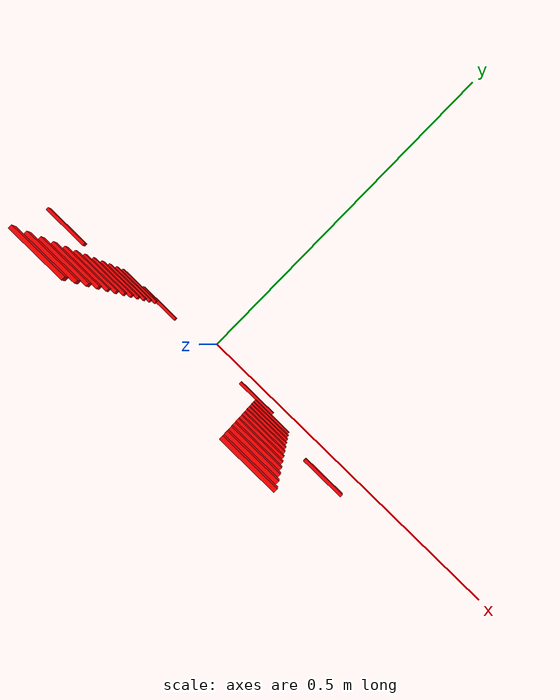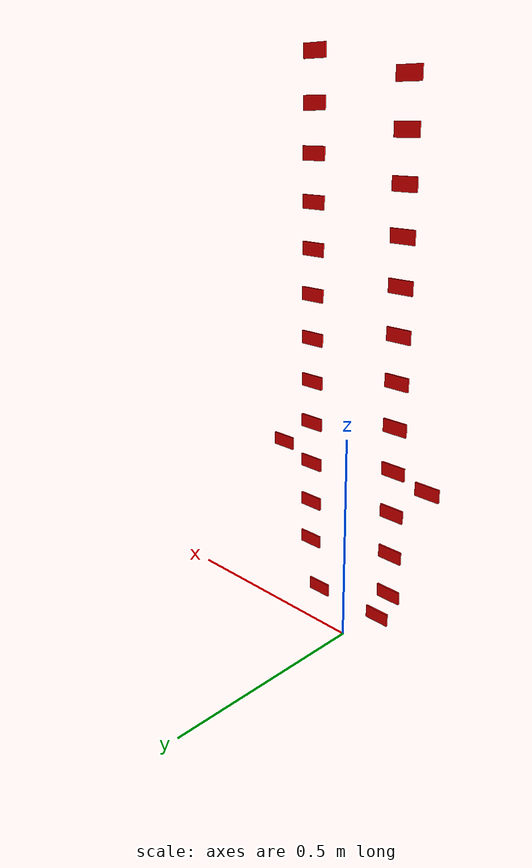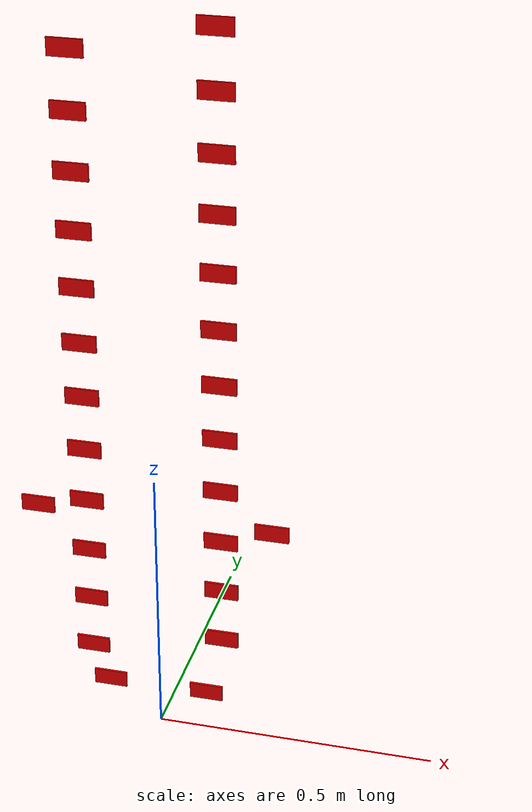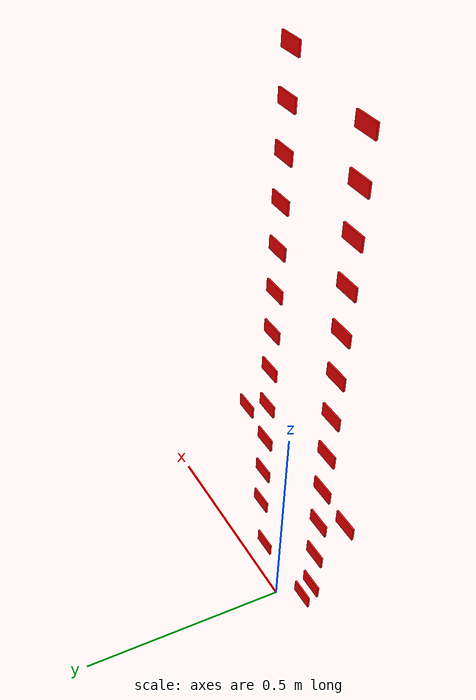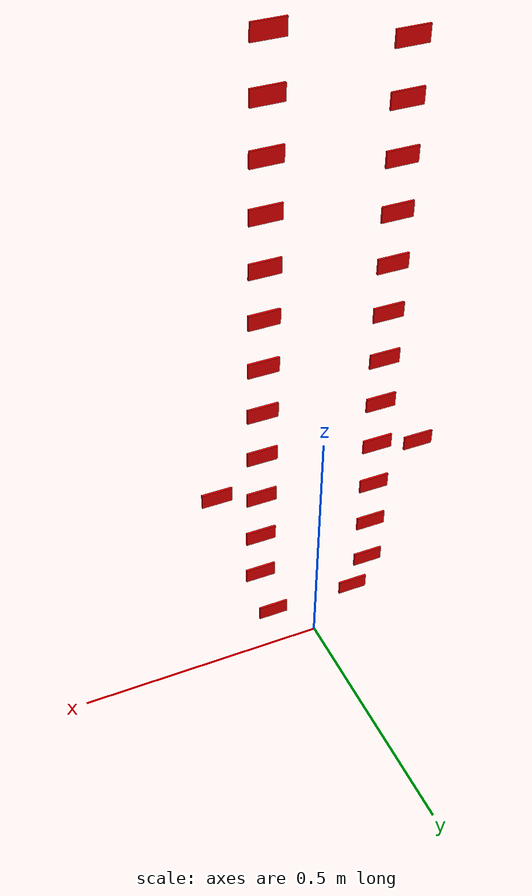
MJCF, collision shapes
<mujoco>
  <compiler angle="radian" autolimits="true"/>
  <default>

    <!-- Collision Class -->
    <default class="hold_collision">
      <geom type="box"
            pos="0 -0.013 0.012"
            size="0.03 0.015 0.002"
            contype="1" conaffinity="1"
            rgba="1 0 0 1"
            solimp="0.99 0.99 0.01"
            solref="0.01 1"
            mass="0"/>
    </default>

    <!-- Visual Mesh Hold -->
    <default class="hold_visual">
      <geom type="mesh"
            contype="0" conaffinity="0"/>
    </default>

  </default>

  <asset>
    <mesh scale="0.4 0.3 0.4" name="Jug1Center" file="assets/jug3_center.obj"/>
  </asset>

  <worldbody>

  <body name="foot_l_start" pos="-0.09 0.0 0.1" quat="0.70710678 0.70710678 0.0 0.0">
    <geom class="hold_visual" name="foot_l_start_geom" mesh="Jug1Center" rgba="0.8 0.2 0.8 1" />
    <geom class="hold_collision"/>
  </body>
  <body name="foot_r_start" pos="0.09 0.0 0.1" quat="0.70710678 0.70710678 0.0 0.0">
    <geom class="hold_visual" name="foot_r_start_geom" mesh="Jug1Center" rgba="0 1 0 1" />
    <geom class="hold_collision"/>
  </body>
  <body name="hand_l_start" pos="-0.21 0.0 0.45" quat="0.70710678 0.70710678 0.0 0.0">
    <geom class="hold_visual" name="hand_l_start_geom" mesh="Jug1Center" rgba="0.8 0.2 0.8 1" />
    <geom class="hold_collision"/>
  </body>
  <body name="hand_r_start" pos="0.21 0.0 0.45" quat="0.70710678 0.70710678 0.0 0.0">
    <geom class="hold_visual" name="hand_r_start_geom" mesh="Jug1Center" rgba="0 1 0 1" />
    <geom class="hold_collision"/>
  </body>
  <body name="Jug1Center_5" pos="-0.12 0.0 0.17" quat="0.70710678 0.70710678 0.0 0.0">
    <geom class="hold_visual" name="Jug1Center_5 geom" mesh="Jug1Center" rgba="0.8 0.2 0.8 1" />
    <geom class="hold_collision"/>
  </body>
  <body name="Jug1Center_6" pos="0.12 0.0 0.22" quat="0.70710678 0.70710678 0.0 0.0">
    <geom class="hold_visual" name="Jug1Center_6 geom" mesh="Jug1Center" rgba="0 1 0 1" />
    <geom class="hold_collision"/>
  </body>
  <body name="Jug1Center_7" pos="-0.12 0.0 0.27" quat="0.70710678 0.70710678 0.0 0.0">
    <geom class="hold_visual" name="Jug1Center_7 geom" mesh="Jug1Center" rgba="0.8 0.2 0.8 1" />
    <geom class="hold_collision"/>
  </body>
  <body name="Jug1Center_8" pos="0.12 0.0 0.32" quat="0.70710678 0.70710678 0.0 0.0">
    <geom class="hold_visual" name="Jug1Center_8 geom" mesh="Jug1Center" rgba="0 1 0 1" />
    <geom class="hold_collision"/>
  </body>
  <body name="Jug1Center_9" pos="-0.12 0.0 0.37" quat="0.70710678 0.70710678 0.0 0.0">
    <geom class="hold_visual" name="Jug1Center_9 geom" mesh="Jug1Center" rgba="0.8 0.2 0.8 1" />
    <geom class="hold_collision"/>
  </body>
  <body name="Jug1Center_10" pos="0.12 0.0 0.42" quat="0.70710678 0.70710678 0.0 0.0">
    <geom class="hold_visual" name="Jug1Center_10 geom" mesh="Jug1Center" rgba="0 1 0 1"/>
    <geom class="hold_collision"/>
  </body>
  <body name="Jug1Center_11" pos="-0.12 0.0 0.47" quat="0.70710678 0.70710678 0.0 0.0">
    <geom class="hold_visual" name="Jug1Center_11 geom" mesh="Jug1Center" rgba="0.8 0.2 0.8 1" />
    <geom class="hold_collision"/>
  </body>
  <body name="Jug1Center_12" pos="0.12 0.0 0.52" quat="0.70710678 0.70710678 0.0 0.0">
    <geom class="hold_visual" name="Jug1Center_12 geom" mesh="Jug1Center" rgba="0 1 0 1" />
    <geom class="hold_collision"/>
  </body>
  <body name="Jug1Center_13" pos="-0.12 0.0 0.57" quat="0.70710678 0.70710678 0.0 0.0">
    <geom class="hold_visual" name="Jug1Center_13 geom" mesh="Jug1Center" rgba="0.8 0.2 0.8 1" />
    <geom class="hold_collision"/>
  </body>
  <body name="Jug1Center_14" pos="0.12 0.0 0.62" quat="0.70710678 0.70710678 0.0 0.0">
    <geom class="hold_visual" name="Jug1Center_14 geom" mesh="Jug1Center" rgba="0 1 0 1" />
    <geom class="hold_collision"/>
  </body>
  <body name="Jug1Center_15" pos="-0.12 0.0 0.67" quat="0.70710678 0.70710678 0.0 0.0">
    <geom class="hold_visual" name="Jug1Center_15 geom" mesh="Jug1Center" rgba="0.8 0.2 0.8 1" />
    <geom class="hold_collision"/>
  </body>
  <body name="Jug1Center_16" pos="0.12 0.0 0.72" quat="0.70710678 0.70710678 0.0 0.0">
    <geom class="hold_visual" name="Jug1Center_16 geom" mesh="Jug1Center" rgba="0 1 0 1"/>
    <geom class="hold_collision"/>
  </body>
  <body name="Jug1Center_17" pos="-0.12 0.0 0.77" quat="0.70710678 0.70710678 0.0 0.0">
    <geom class="hold_visual" name="Jug1Center_17 geom" mesh="Jug1Center" rgba="0.8 0.2 0.8 1" />
    <geom class="hold_collision"/>
  </body>
  <body name="Jug1Center_18" pos="0.12 0.0 0.82" quat="0.70710678 0.70710678 0.0 0.0">
    <geom class="hold_visual" name="Jug1Center_18 geom" mesh="Jug1Center" rgba="0 1 0 1" />
    <geom class="hold_collision"/>
  </body>
  <body name="Jug1Center_19" pos="-0.12 0.0 0.87" quat="0.70710678 0.70710678 0.0 0.0">
    <geom class="hold_visual" name="Jug1Center_19 geom" mesh="Jug1Center" rgba="0.8 0.2 0.8 1" />
    <geom class="hold_collision"/>
  </body>
  <body name="Jug1Center_20" pos="0.12 0.0 0.92" quat="0.70710678 0.70710678 0.0 0.0">
    <geom class="hold_visual" name="Jug1Center_20 geom" mesh="Jug1Center" rgba="0 1 0 1" />
    <geom class="hold_collision"/>
  </body>
  <body name="Jug1Center_21" pos="-0.12 0.0 0.97" quat="0.70710678 0.70710678 0.0 0.0">
    <geom class="hold_visual" name="Jug1Center_21 geom" mesh="Jug1Center" rgba="0.8 0.2 0.8 1" />
    <geom class="hold_collision"/>
  </body>
  <body name="Jug1Center_22" pos="0.12 0.0 1.02" quat="0.70710678 0.70710678 0.0 0.0">
    <geom class="hold_visual" name="Jug1Center_22 geom" mesh="Jug1Center" rgba="0 1 0 1"/>
    <geom class="hold_collision"/>
  </body>
  <body name="Jug1Center_23" pos="-0.12 0.0 1.07" quat="0.70710678 0.70710678 0.0 0.0">
    <geom class="hold_visual" name="Jug1Center_23 geom" mesh="Jug1Center" rgba="0.8 0.2 0.8 1" />
    <geom class="hold_collision"/>
  </body>
  <body name="Jug1Center_24" pos="0.12 0.0 1.12" quat="0.70710678 0.70710678 0.0 0.0">
    <geom class="hold_visual" name="Jug1Center_24 geom" mesh="Jug1Center" rgba="0 1 0 1" />
    <geom class="hold_collision"/>
  </body>
  <body name="Jug1Center_25" pos="-0.12 0.0 1.17" quat="0.70710678 0.70710678 0.0 0.0">
    <geom class="hold_visual" name="Jug1Center_25 geom" mesh="Jug1Center" rgba="0.8 0.2 0.8 1" />
    <geom class="hold_collision"/>
  </body>
  <body name="Jug1Center_26" pos="0.12 0.0 1.22" quat="0.70710678 0.70710678 0.0 0.0">
    <geom class="hold_visual" name="Jug1Center_26 geom" mesh="Jug1Center" rgba="0 1 0 1" />
    <geom class="hold_collision"/>
  </body>
  <body name="Jug1Center_27" pos="-0.12 0.0 1.27" quat="0.70710678 0.70710678 0.0 0.0">
    <geom class="hold_visual" name="Jug1Center_27 geom" mesh="Jug1Center" rgba="0.8 0.2 0.8 1" />
    <geom class="hold_collision"/>
  </body>
  <body name="Jug1Center_28" pos="0.12 0.0 1.32" quat="0.70710678 0.70710678 0.0 0.0">
    <geom class="hold_visual" name="Jug1Center_28 geom" mesh="Jug1Center" rgba="0 1 0 1"/>
    <geom class="hold_collision"/>
  </body>
</worldbody>

</mujoco>
